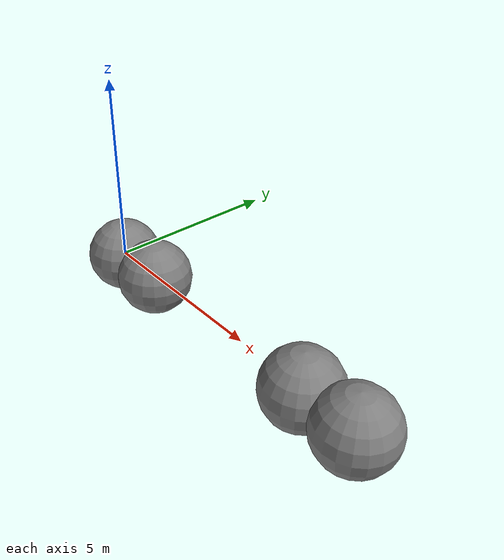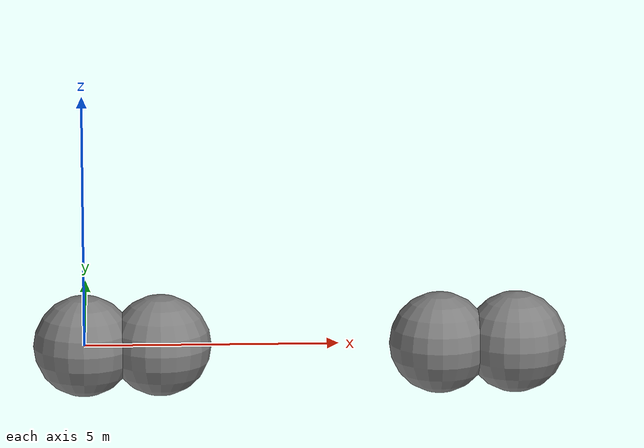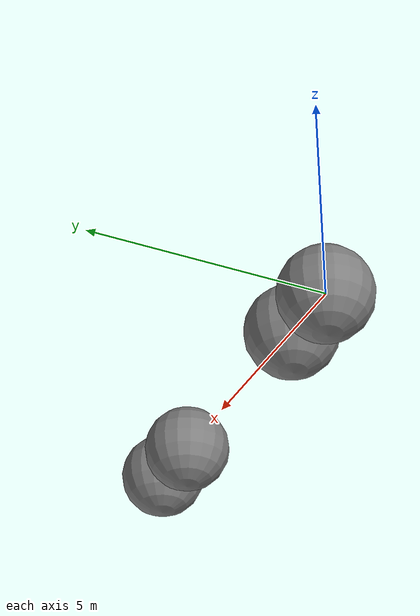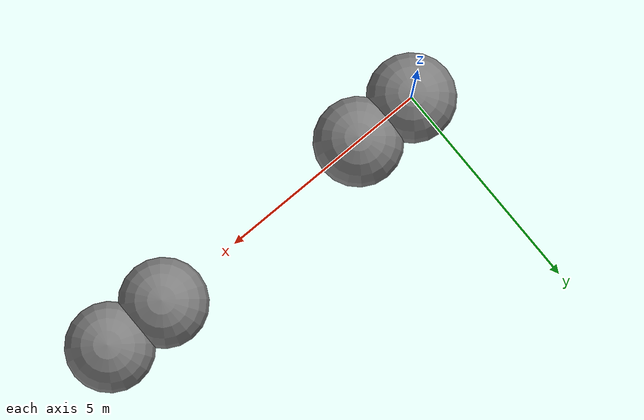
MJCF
<mujoco>
  <worldbody>
    <body name="1" >
      <freejoint />
      <geom size="1" pos="7 0 0"/>
    </body>
    <body name="2" >
      <freejoint />
      <geom size="1" pos="8.5 0 0"/>
    </body>

    <body name="3" >
      <geom size="1"/>
    </body>
    <body name="4" >
      <geom size="1" pos="1.5 0 0"/>
    </body>
  </worldbody>

  <equality>
    <weld body1="1" body2="2"/>
    <weld body1="3" body2="4"/>
  </equality>
</mujoco>
